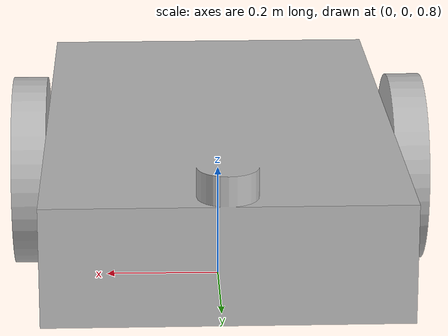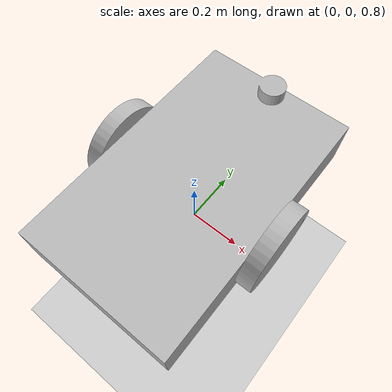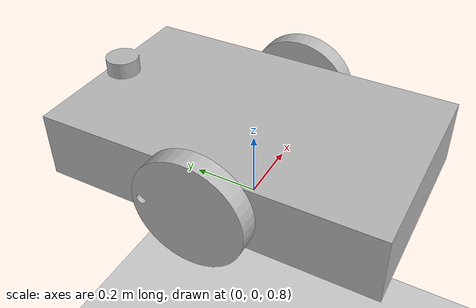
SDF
<?xml version="1.0" ?>

<sdf version="1.5">
	<world name="default">

		<!-- A global light source -->
		<include>
			<uri>model://sun</uri>
		</include>

		<!-- A ground plane -->
		<include>
			<uri>model://ground_plane</uri>
		</include>

		<include>
			<uri>model://robot</uri>
			<pose>0 0 1 1.57 0 0</pose>
		</include>
	</world>
</sdf>

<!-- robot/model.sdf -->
<sdf version="1.5">
  <model name="robot">
    <static>false</static>
<self_collide>true</self_collide>

    <link name="body">
<pose>0 0 0 0 0 0</pose>
      <collision name="collision">
        <geometry>
        <mesh>
<uri>model://robot/mesh/test.stl</uri>
<scale>0.1 0.1 0.1</scale>
	</mesh>
        </geometry>
      </collision>
      <visual name="pokazhi">
        <geometry>
        <mesh>
<uri>model://robot/mesh/test.stl</uri>
<scale>0.1 0.1 0.1</scale>
	</mesh>
        </geometry>
      </visual>
    </link>

    <link name="wheel_r">
<pose>0.3 0 0 0 3.14 -1.57</pose>
      <collision name="collision">
        <geometry>
        <mesh>
<uri>model://robot/mesh/wheel.stl</uri>
<scale>0.03 0.03 0.03</scale>
	</mesh>
        </geometry>
      </collision>
      <visual name="pokazhi">
        <geometry>
        <mesh>
<uri>model://robot/mesh/wheel.stl</uri>
<scale>0.03 0.03 0.03</scale>
	</mesh>
        </geometry>
      </visual>
    </link>

    <link name="wheel_l">
<pose>-0.3 0 0 0 3.14 1.57</pose>
      <collision name="collision">
        <geometry>
        <mesh>
<uri>model://robot/mesh/wheel.stl</uri>
<scale>0.03 0.03 0.03</scale>
	</mesh>
        </geometry>
      </collision>
      <visual name="pokazhi">
        <geometry>
        <mesh>
<uri>model://robot/mesh/wheel.stl</uri>
<scale>0.03 0.03 0.03</scale>
	</mesh>
        </geometry>
      </visual>
    </link>

<joint name="body_wheel_r" type="revolute">
  <parent>body</parent>
    <child>wheel_r</child>
  <pose>0 0 0 0 0 0</pose>
<axis>
        <xyz>0 1 0</xyz>
      </axis>
 </joint>

<joint name="body_wheel_l" type="revolute">
  <parent>body</parent>
    <child>wheel_l</child>
  <pose>0 0 0 0 0 0</pose>
<axis>
        <xyz>0 1 0</xyz>
      </axis>
 </joint>

  </model>
</sdf>
